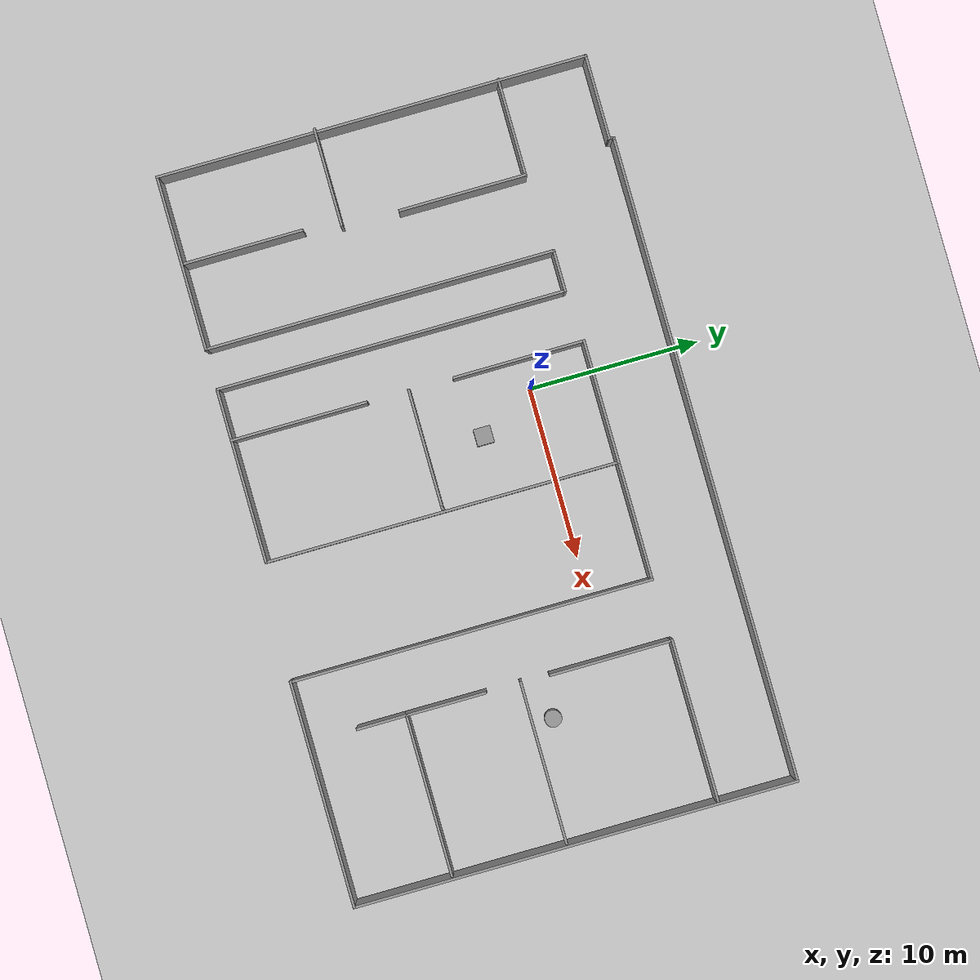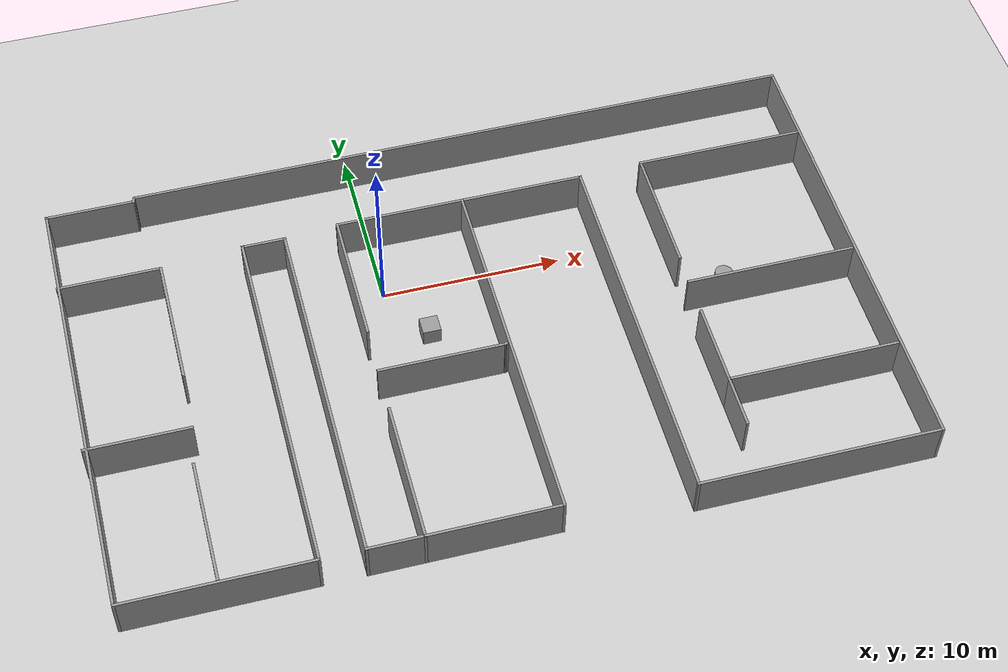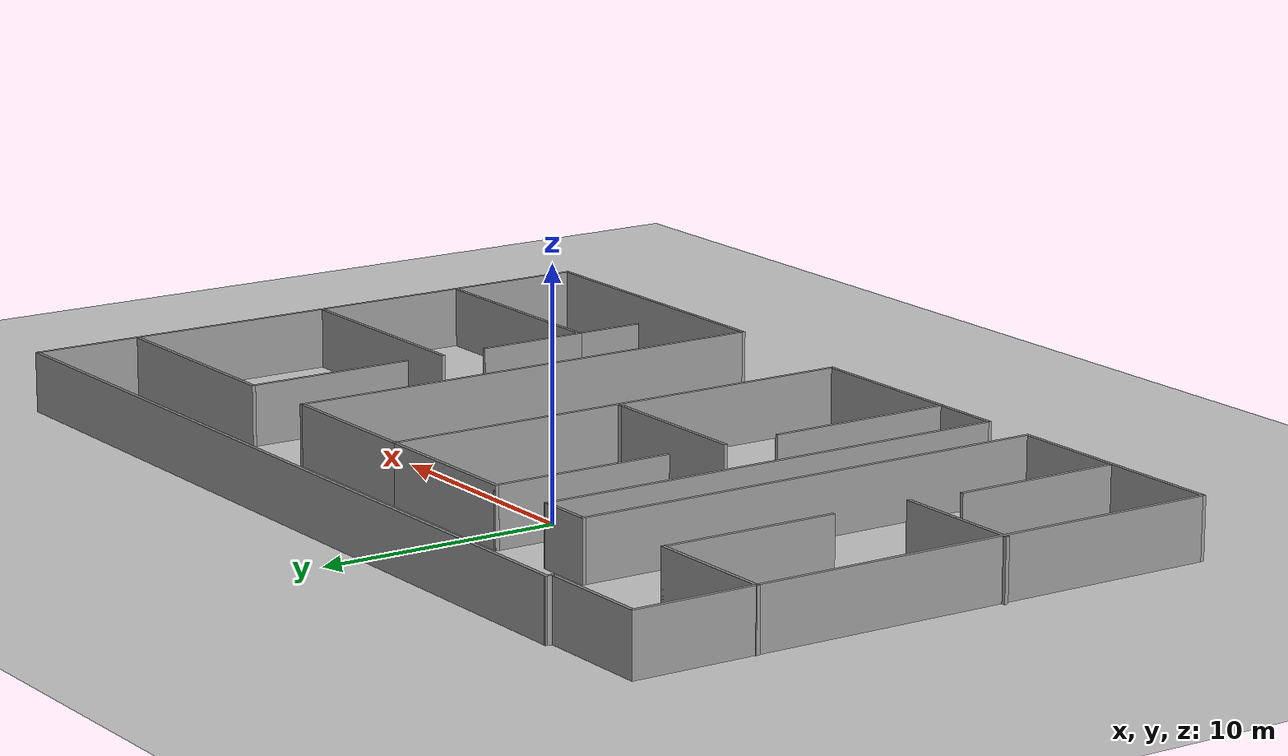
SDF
<sdf version="1.7">
 <world name="default">
  <light name="sun" type="directional">
   <pose>0 0 10 0 -0 0</pose>
   <diffuse>0.8 0.8 0.8 1</diffuse>
   <specular>0.2 0.2 0.2 1</specular>
   <attenuation>
    <range>1000</range>
    <constant>0.9</constant>
    <linear>0.01</linear>
    <quadratic>0.001</quadratic>
   </attenuation>
   <direction>-0.5 0.1 -0.9</direction>
   <spot><inner_angle>0</inner_angle><outer_angle>0</outer_angle><falloff>0</falloff></spot>
  </light>
  <model name="ground_plane">
   <static>1</static>
   <link name="link">
    <collision name="collision">
     <geometry><plane><normal>0 0 1</normal><size>100 100</size></plane></geometry>
     <surface><friction><ode><mu>100</mu><mu2>50</mu2></ode></friction></surface>
    </collision>
    <visual name="visual">
     <cast_shadows>0</cast_shadows>
     <geometry><plane><normal>0 0 1</normal><size>100 100</size></plane></geometry>
     <material>
      <script><uri>file://media/materials/scripts/gazebo.material</uri><name>Gazebo/Grey</name></script>
     </material>
    </visual>
   </link>
  </model>
  <gravity>0 0 -9.8</gravity>
  <magnetic_field>6e-06 2.3e-05 -4.2e-05</magnetic_field>
  <atmosphere type="adiabatic"/>
  <physics type="ode">
   <max_step_size>0.001</max_step_size>
   <real_time_factor>1</real_time_factor>
   <real_time_update_rate>1000</real_time_update_rate>
  </physics>
  <scene><ambient>0.4 0.4 0.4 1</ambient><background>0.7 0.7 0.7 1</background><shadows>1</shadows></scene>
  <audio><device>default</device></audio>
  <spherical_coordinates>
   <surface_model>EARTH_WGS84</surface_model>
   <latitude_deg>0</latitude_deg>
   <longitude_deg>0</longitude_deg>
   <elevation>0</elevation>
   <heading_deg>0</heading_deg>
  </spherical_coordinates>
  <model name="phybuilding.world">
   <pose>4.03596 -4.57341 0 0 -0 0</pose>
   <link name="Wall_21">
    <collision name="Wall_21_Collision">
     <geometry><box><size>37.75 0.15 2.5</size></box></geometry>
     <pose>0 0 1.25 0 -0 0</pose>
    </collision>
    <visual name="Wall_21_Visual">
     <pose>0 0 1.25 0 -0 0</pose>
     <geometry><box><size>37.75 0.15 2.5</size></box></geometry>
     <material>
      <script><uri>file://media/materials/scripts/gazebo.material</uri><name>Gazebo/Grey</name></script>
      <ambient>1 1 1 1</ambient>
     </material>
     <meta><layer>0</layer></meta>
    </visual>
    <pose>2.53712 12.9184 0 0 -0 0</pose>
   </link>
   <link name="Wall_22">
    <collision name="Wall_22_Collision">
     <geometry><box><size>26 0.15 2.5</size></box></geometry>
     <pose>0 0 1.25 0 -0 0</pose>
    </collision>
    <visual name="Wall_22_Visual">
     <pose>0 0 1.25 0 -0 0</pose>
     <geometry><box><size>26 0.15 2.5</size></box></geometry>
     <material>
      <script><uri>file://media/materials/scripts/gazebo.material</uri><name>Gazebo/Grey</name></script>
      <ambient>1 1 1 1</ambient>
     </material>
     <meta><layer>0</layer></meta>
    </visual>
    <pose>21.3371 -0.006625 0 0 -0 -1.5708</pose>
   </link>
   <link name="Wall_23">
    <collision name="Wall_23_Collision">
     <geometry><box><size>13.25 0.15 2.5</size></box></geometry>
     <pose>0 0 1.25 0 -0 0</pose>
    </collision>
    <visual name="Wall_23_Visual">
     <pose>0 0 1.25 0 -0 0</pose>
     <geometry><box><size>13.25 0.15 2.5</size></box></geometry>
     <material>
      <script><uri>file://media/materials/scripts/gazebo.material</uri><name>Gazebo/Grey</name></script>
      <ambient>1 1 1 1</ambient>
     </material>
     <meta><layer>0</layer></meta>
    </visual>
    <pose>14.7871 -12.9316 0 0 -0 3.14159</pose>
   </link>
   <link name="Wall_24">
    <collision name="Wall_24_Collision">
     <geometry><box><size>21.25 0.15 2.5</size></box></geometry>
     <pose>0 0 1.25 0 -0 0</pose>
    </collision>
    <visual name="Wall_24_Visual">
     <pose>0 0 1.25 0 -0 0</pose>
     <geometry><box><size>21.25 0.15 2.5</size></box></geometry>
     <material>
      <script><uri>file://media/materials/scripts/gazebo.material</uri><name>Gazebo/Grey</name></script>
      <ambient>1 1 1 1</ambient>
     </material>
     <meta><layer>0</layer></meta>
    </visual>
    <pose>8.23711 -2.38163 0 0 -0 1.5708</pose>
   </link>
   <link name="Wall_25">
    <collision name="Wall_25_Collision">
     <geometry><box><size>7 0.15 2.5</size></box></geometry>
     <pose>0 0 1.25 0 -0 0</pose>
    </collision>
    <visual name="Wall_25_Visual">
     <pose>0 0 1.25 0 -0 0</pose>
     <geometry><box><size>7 0.15 2.5</size></box></geometry>
     <material>
      <script><uri>file://media/materials/scripts/gazebo.material</uri><name>Gazebo/Grey</name></script>
      <ambient>1 1 1 1</ambient>
     </material>
     <meta><layer>0</layer></meta>
    </visual>
    <pose>4.81212 8.16837 0 0 -0 3.14159</pose>
   </link>
   <link name="Wall_26">
    <collision name="Wall_26_Collision">
     <geometry><box><size>20.75 0.15 2.5</size></box></geometry>
     <pose>0 0 1.25 0 -0 0</pose>
    </collision>
    <visual name="Wall_26_Visual">
     <pose>0 0 1.25 0 -0 0</pose>
     <geometry><box><size>20.75 0.15 2.5</size></box></geometry>
     <material>
      <script><uri>file://media/materials/scripts/gazebo.material</uri><name>Gazebo/Grey</name></script>
      <ambient>1 1 1 1</ambient>
     </material>
     <meta><layer>0</layer></meta>
    </visual>
    <pose>1.38712 -2.13163 0 0 -0 -1.5708</pose>
   </link>
   <link name="Wall_27">
    <collision name="Wall_27_Collision">
     <geometry><box><size>10.25 0.15 2.5</size></box></geometry>
     <pose>0 0 1.25 0 -0 0</pose>
    </collision>
    <visual name="Wall_27_Visual">
     <pose>0 0 1.25 0 -0 0</pose>
     <geometry><box><size>10.25 0.15 2.5</size></box></geometry>
     <material>
      <script><uri>file://media/materials/scripts/gazebo.material</uri><name>Gazebo/Grey</name></script>
      <ambient>1 1 1 1</ambient>
     </material>
     <meta><layer>0</layer></meta>
    </visual>
    <pose>-3.66289 -12.4316 0 0 -0 3.14159</pose>
   </link>
   <link name="Wall_28">
    <collision name="Wall_28_Collision">
     <geometry><box><size>20.5 0.15 2.5</size></box></geometry>
     <pose>0 0 1.25 0 -0 0</pose>
    </collision>
    <visual name="Wall_28_Visual">
     <pose>0 0 1.25 0 -0 0</pose>
     <geometry><box><size>20.5 0.15 2.5</size></box></geometry>
     <material>
      <script><uri>file://media/materials/scripts/gazebo.material</uri><name>Gazebo/Grey</name></script>
      <ambient>1 1 1 1</ambient>
     </material>
     <meta><layer>0</layer></meta>
    </visual>
    <pose>-8.71288 -2.25663 0 0 -0 1.5708</pose>
   </link>
   <link name="Wall_29">
    <collision name="Wall_29_Collision">
     <geometry><box><size>2.5 0.15 2.5</size></box></geometry>
     <pose>0 0 1.25 0 -0 0</pose>
    </collision>
    <visual name="Wall_29_Visual">
     <pose>0 0 1.25 0 -0 0</pose>
     <geometry><box><size>2.5 0.15 2.5</size></box></geometry>
     <material>
      <script><uri>file://media/materials/scripts/gazebo.material</uri><name>Gazebo/Grey</name></script>
      <ambient>1 1 1 1</ambient>
     </material>
     <meta><layer>0</layer></meta>
    </visual>
    <pose>-9.88789 7.91838 0 0 -0 3.14159</pose>
   </link>
   <link name="Wall_30">
    <collision name="Wall_30_Collision">
     <geometry><box><size>20.5 0.15 2.5</size></box></geometry>
     <pose>0 0 1.25 0 -0 0</pose>
    </collision>
    <visual name="Wall_30_Visual">
     <pose>0 0 1.25 0 -0 0</pose>
     <geometry><box><size>20.5 0.15 2.5</size></box></geometry>
     <material>
      <script><uri>file://media/materials/scripts/gazebo.material</uri><name>Gazebo/Grey</name></script>
      <ambient>1 1 1 1</ambient>
     </material>
     <meta><layer>0</layer></meta>
    </visual>
    <pose>-11.0629 -2.25663 0 0 -0 -1.5708</pose>
   </link>
   <link name="Wall_31">
    <collision name="Wall_31_Collision">
     <geometry><box><size>10.25 0.15 2.5</size></box></geometry>
     <pose>0 0 1.25 0 -0 0</pose>
    </collision>
    <visual name="Wall_31_Visual">
     <pose>0 0 1.25 0 -0 0</pose>
     <geometry><box><size>10.25 0.15 2.5</size></box></geometry>
     <material>
      <script><uri>file://media/materials/scripts/gazebo.material</uri><name>Gazebo/Grey</name></script>
      <ambient>1 1 1 1</ambient>
     </material>
     <meta><layer>0</layer></meta>
    </visual>
    <pose>-16.1129 -12.4316 0 0 -0 3.14159</pose>
   </link>
   <link name="Wall_32">
    <collision name="Wall_32_Collision">
     <geometry><box><size>25.25 0.15 2.5</size></box></geometry>
     <pose>0 0 1.25 0 -0 0</pose>
    </collision>
    <visual name="Wall_32_Visual">
     <pose>0 0 1.25 0 -0 0</pose>
     <geometry><box><size>25.25 0.15 2.5</size></box></geometry>
     <material>
      <script><uri>file://media/materials/scripts/gazebo.material</uri><name>Gazebo/Grey</name></script>
      <ambient>1 1 1 1</ambient>
     </material>
     <meta><layer>0</layer></meta>
    </visual>
    <pose>-21.1629 0.118375 0 0 -0 1.5708</pose>
   </link>
   <link name="Wall_33">
    <collision name="Wall_33_Collision">
     <geometry><box><size>5 0.15 2.5</size></box></geometry>
     <pose>0 0 1.25 0 -0 0</pose>
    </collision>
    <visual name="Wall_33_Visual">
     <pose>0 0 1.25 0 -0 0</pose>
     <geometry><box><size>5 0.15 2.5</size></box></geometry>
     <material>
      <script><uri>file://media/materials/scripts/gazebo.material</uri><name>Gazebo/Grey</name></script>
      <ambient>1 1 1 1</ambient>
     </material>
     <meta><layer>0</layer></meta>
    </visual>
    <pose>-18.7379 12.6684 0 0 -0 0</pose>
   </link>
   <link name="Wall_34">
    <collision name="Wall_34_Collision">
     <geometry><box><size>0.404951 0.15 2.5</size></box></geometry>
     <pose>0 0 1.25 0 -0 0</pose>
    </collision>
    <visual name="Wall_34_Visual">
     <pose>0 0 1.25 0 -0 0</pose>
     <geometry><box><size>0.404951 0.15 2.5</size></box></geometry>
     <material>
      <script><uri>file://media/materials/scripts/gazebo.material</uri><name>Gazebo/Grey</name></script>
      <ambient>1 1 1 1</ambient>
     </material>
     <meta><layer>0</layer></meta>
    </visual>
    <pose>-16.2879 12.7934 0 0 -0 1.3734</pose>
   </link>
   <link name="Wall_36">
    <collision name="Wall_36_Collision">
     <geometry><box><size>9.5 0.15 2.5</size></box></geometry>
     <pose>0 0 1.25 0 -0 0</pose>
    </collision>
    <visual name="Wall_36_Visual">
     <pose>0 0 1.25 0 -0 0</pose>
     <geometry><box><size>9.5 0.15 2.5</size></box></geometry>
     <material>
      <script><uri>file://media/materials/scripts/gazebo.material</uri><name>Gazebo/Grey</name></script>
      <ambient>1 1 1 1</ambient>
     </material>
     <meta><layer>0</layer></meta>
    </visual>
    <pose>16.5158 8.31965 0 0 -0 3.14159</pose>
   </link>
   <link name="Wall_37">
    <collision name="Wall_37_Collision">
     <geometry><box><size>7.25 0.15 2.5</size></box></geometry>
     <pose>0 0 1.25 0 -0 0</pose>
    </collision>
    <visual name="Wall_37_Visual">
     <pose>0 0 1.25 0 -0 0</pose>
     <geometry><box><size>7.25 0.15 2.5</size></box></geometry>
     <material>
      <script><uri>file://media/materials/scripts/gazebo.material</uri><name>Gazebo/Grey</name></script>
      <ambient>1 1 1 1</ambient>
     </material>
     <meta><layer>0</layer></meta>
    </visual>
    <pose>11.8408 4.76965 0 0 -0 -1.5708</pose>
   </link>
   <link name="Wall_39">
    <collision name="Wall_39_Collision">
     <geometry><box><size>9.5 0.15 2.5</size></box></geometry>
     <pose>0 0 1.25 0 -0 0</pose>
    </collision>
    <visual name="Wall_39_Visual">
     <pose>0 0 1.25 0 -0 0</pose>
     <geometry><box><size>9.5 0.15 2.5</size></box></geometry>
     <material>
      <script><uri>file://media/materials/scripts/gazebo.material</uri><name>Gazebo/Grey</name></script>
      <ambient>1 1 1 1</ambient>
     </material>
     <meta><layer>0</layer></meta>
    </visual>
    <pose>16.4731 -0.510217 0 0 -0 0</pose>
   </link>
   <link name="Wall_41">
    <collision name="Wall_41_Collision">
     <geometry><box><size>4.75 0.15 2.5</size></box></geometry>
     <pose>0 0 1.25 0 -0 0</pose>
    </collision>
    <visual name="Wall_41_Visual">
     <pose>0 0 1.25 0 -0 0</pose>
     <geometry><box><size>4.75 0.15 2.5</size></box></geometry>
     <material>
      <script><uri>file://media/materials/scripts/gazebo.material</uri><name>Gazebo/Grey</name></script>
      <ambient>1 1 1 1</ambient>
     </material>
     <meta><layer>0</layer></meta>
    </visual>
    <pose>11.7981 -4.88576 0 0 -0 -1.5708</pose>
   </link>
   <link name="Wall_42">
    <collision name="Wall_42_Collision">
     <geometry><box><size>9.5 0.15 2.5</size></box></geometry>
     <pose>0 0 1.25 0 -0 0</pose>
    </collision>
    <visual name="Wall_42_Visual">
     <pose>0 0 1.25 0 -0 0</pose>
     <geometry><box><size>9.5 0.15 2.5</size></box></geometry>
     <material>
      <script><uri>file://media/materials/scripts/gazebo.material</uri><name>Gazebo/Grey</name></script>
      <ambient>1 1 1 1</ambient>
     </material>
     <meta><layer>0</layer></meta>
    </visual>
    <pose>16.4731 -7.18576 0 0 -0 0</pose>
   </link>
   <link name="Wall_44">
    <collision name="Wall_44_Collision">
     <geometry><box><size>3 0.15 2.5</size></box></geometry>
     <pose>0 0 1.25 0 -0 0</pose>
    </collision>
    <visual name="Wall_44_Visual">
     <pose>0 0 1.25 0 -0 0</pose>
     <geometry><box><size>3 0.15 2.5</size></box></geometry>
     <material>
      <script><uri>file://media/materials/scripts/gazebo.material</uri><name>Gazebo/Grey</name></script>
      <ambient>1 1 1 1</ambient>
     </material>
     <meta><layer>0</layer></meta>
    </visual>
    <pose>11.7981 -8.61076 0 0 -0 -1.5708</pose>
   </link>
   <link name="Wall_46">
    <collision name="Wall_46_Collision">
     <geometry><box><size>7.25 0.15 2.5</size></box></geometry>
     <pose>0 0 1.25 0 -0 0</pose>
    </collision>
    <visual name="Wall_46_Visual">
     <pose>0 0 1.25 0 -0 0</pose>
     <geometry><box><size>7.25 0.15 2.5</size></box></geometry>
     <material>
      <script><uri>file://media/materials/scripts/gazebo.material</uri><name>Gazebo/Grey</name></script>
      <ambient>1 1 1 1</ambient>
     </material>
     <meta><layer>0</layer></meta>
    </visual>
    <pose>-2.16289 8.16837 0 0 -0 3.14159</pose>
   </link>
   <link name="Wall_47">
    <collision name="Wall_47_Collision">
     <geometry><box><size>7.75 0.15 2.5</size></box></geometry>
     <pose>0 0 1.25 0 -0 0</pose>
    </collision>
    <visual name="Wall_47_Visual">
     <pose>0 0 1.25 0 -0 0</pose>
     <geometry><box><size>7.75 0.15 2.5</size></box></geometry>
     <material>
      <script><uri>file://media/materials/scripts/gazebo.material</uri><name>Gazebo/Grey</name></script>
      <ambient>1 1 1 1</ambient>
     </material>
     <meta><layer>0</layer></meta>
    </visual>
    <pose>-5.71288 4.36838 0 0 -0 -1.5708</pose>
   </link>
   <link name="Wall_49">
    <collision name="Wall_49_Collision">
     <geometry><box><size>7 0.15 2.5</size></box></geometry>
     <pose>0 0 1.25 0 -0 0</pose>
    </collision>
    <visual name="Wall_49_Visual">
     <pose>0 0 1.25 0 -0 0</pose>
     <geometry><box><size>7 0.15 2.5</size></box></geometry>
     <material>
      <script><uri>file://media/materials/scripts/gazebo.material</uri><name>Gazebo/Grey</name></script>
      <ambient>1 1 1 1</ambient>
     </material>
     <meta><layer>0</layer></meta>
    </visual>
    <pose>-2.3111 -2.07624 0 0 -0 0</pose>
   </link>
   <link name="Wall_50">
    <collision name="Wall_50_Collision">
     <geometry><box><size>0.25 0.15 2.5</size></box></geometry>
     <pose>0 0 1.25 0 -0 0</pose>
    </collision>
    <visual name="Wall_50_Visual">
     <pose>0 0 1.25 0 -0 0</pose>
     <geometry><box><size>0.25 0.15 2.5</size></box></geometry>
     <material>
      <script><uri>file://media/materials/scripts/gazebo.material</uri><name>Gazebo/Grey</name></script>
      <ambient>1 1 1 1</ambient>
     </material>
     <meta><layer>0</layer></meta>
    </visual>
    <pose>1.1622 -2.0633 0 0 -0 0.261799</pose>
   </link>
   <link name="Wall_52">
    <collision name="Wall_52_Collision">
     <geometry><box><size>8 0.15 2.5</size></box></geometry>
     <pose>0 0 1.25 0 -0 0</pose>
    </collision>
    <visual name="Wall_52_Visual">
     <pose>0 0 1.25 0 -0 0</pose>
     <geometry><box><size>8 0.15 2.5</size></box></geometry>
     <material>
      <script><uri>file://media/materials/scripts/gazebo.material</uri><name>Gazebo/Grey</name></script>
      <ambient>1 1 1 1</ambient>
     </material>
     <meta><layer>0</layer></meta>
    </visual>
    <pose>-5.7361 -8.50964 0 0 -0 -1.5708</pose>
   </link>
   <link name="Wall_54">
    <collision name="Wall_54_Collision">
     <geometry><box><size>5.75 0.15 2.5</size></box></geometry>
     <pose>0 0 1.25 0 -0 0</pose>
    </collision>
    <visual name="Wall_54_Visual">
     <pose>0 0 1.25 0 -0 0</pose>
     <geometry><box><size>5.75 0.15 2.5</size></box></geometry>
     <material>
      <script><uri>file://media/materials/scripts/gazebo.material</uri><name>Gazebo/Grey</name></script>
      <ambient>1 1 1 1</ambient>
     </material>
     <meta><layer>0</layer></meta>
    </visual>
    <pose>-18.4148 7.55968 0 0 -0 0</pose>
   </link>
   <link name="Wall_55">
    <collision name="Wall_55_Collision">
     <geometry><box><size>7.5 0.15 2.5</size></box></geometry>
     <pose>0 0 1.25 0 -0 0</pose>
    </collision>
    <visual name="Wall_55_Visual">
     <pose>0 0 1.25 0 -0 0</pose>
     <geometry><box><size>7.5 0.15 2.5</size></box></geometry>
     <material>
      <script><uri>file://media/materials/scripts/gazebo.material</uri><name>Gazebo/Grey</name></script>
      <ambient>1 1 1 1</ambient>
     </material>
     <meta><layer>0</layer></meta>
    </visual>
    <pose>-15.6148 3.88468 0 0 -0 -1.5708</pose>
   </link>
   <link name="Wall_57">
    <collision name="Wall_57_Collision">
     <geometry><box><size>5.75 0.15 2.5</size></box></geometry>
     <pose>0 0 1.25 0 -0 0</pose>
    </collision>
    <visual name="Wall_57_Visual">
     <pose>0 0 1.25 0 -0 0</pose>
     <geometry><box><size>5.75 0.15 2.5</size></box></geometry>
     <material>
      <script><uri>file://media/materials/scripts/gazebo.material</uri><name>Gazebo/Grey</name></script>
      <ambient>1 1 1 1</ambient>
     </material>
     <meta><layer>0</layer></meta>
    </visual>
    <pose>-18.5371 -3.17749 0 0 -0 0</pose>
   </link>
   <link name="Wall_59">
    <collision name="Wall_59_Collision">
     <geometry><box><size>7 0.15 2.5</size></box></geometry>
     <pose>0 0 1.25 0 -0 0</pose>
    </collision>
    <visual name="Wall_59_Visual">
     <pose>0 0 1.25 0 -0 0</pose>
     <geometry><box><size>7 0.15 2.5</size></box></geometry>
     <material>
      <script><uri>file://media/materials/scripts/gazebo.material</uri><name>Gazebo/Grey</name></script>
      <ambient>1 1 1 1</ambient>
     </material>
     <meta><layer>0</layer></meta>
    </visual>
    <pose>-16.045 -8.83558 0 0 -0 -1.5708</pose>
   </link>
   <static>1</static>
  </model>
  <model name="unit_cylinder">
   <pose>18.3928 -3.86791 0.499993 -3e-06 -4e-06 -0</pose>
   <link name="link">
    <inertial>
     <mass>1</mass>
     <inertia><ixx>0.145833</ixx><ixy>0</ixy><ixz>0</ixz><iyy>0.145833</iyy><iyz>0</iyz><izz>0.125</izz></inertia>
    </inertial>
    <collision name="collision">
     <geometry><cylinder><radius>0.5</radius><length>1</length></cylinder></geometry>
    </collision>
    <visual name="visual">
     <geometry><cylinder><radius>0.5</radius><length>1</length></cylinder></geometry>
     <material>
      <script><name>Gazebo/Grey</name><uri>file://media/materials/scripts/gazebo.material</uri></script>
     </material>
    </visual>
   </link>
  </model>
  <model name="unit_box">
   <pose>1.87746 -3.27325 0.5 0 -0 0</pose>
   <link name="link">
    <inertial>
     <mass>1</mass>
     <inertia>
      <ixx>0.166667</ixx>
      <ixy>0</ixy>
      <ixz>0</ixz>
      <iyy>0.166667</iyy>
      <iyz>0</iyz>
      <izz>0.166667</izz>
     </inertia>
    </inertial>
    <collision name="collision"><geometry><box><size>1 1 1</size></box></geometry></collision>
    <visual name="visual">
     <geometry><box><size>1 1 1</size></box></geometry>
     <material>
      <script><name>Gazebo/Grey</name><uri>file://media/materials/scripts/gazebo.material</uri></script>
     </material>
    </visual>
   </link>
  </model>
 </world>
</sdf>
